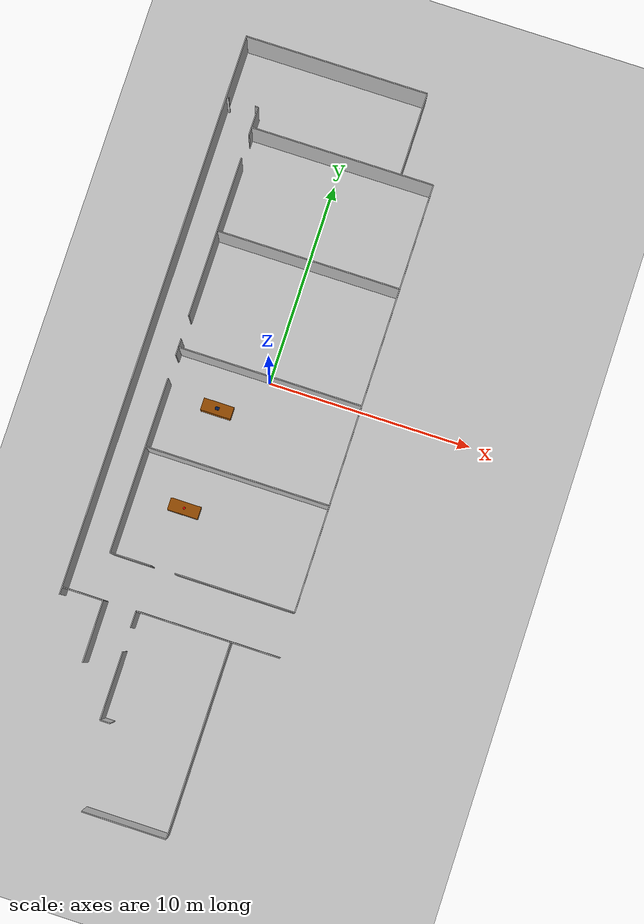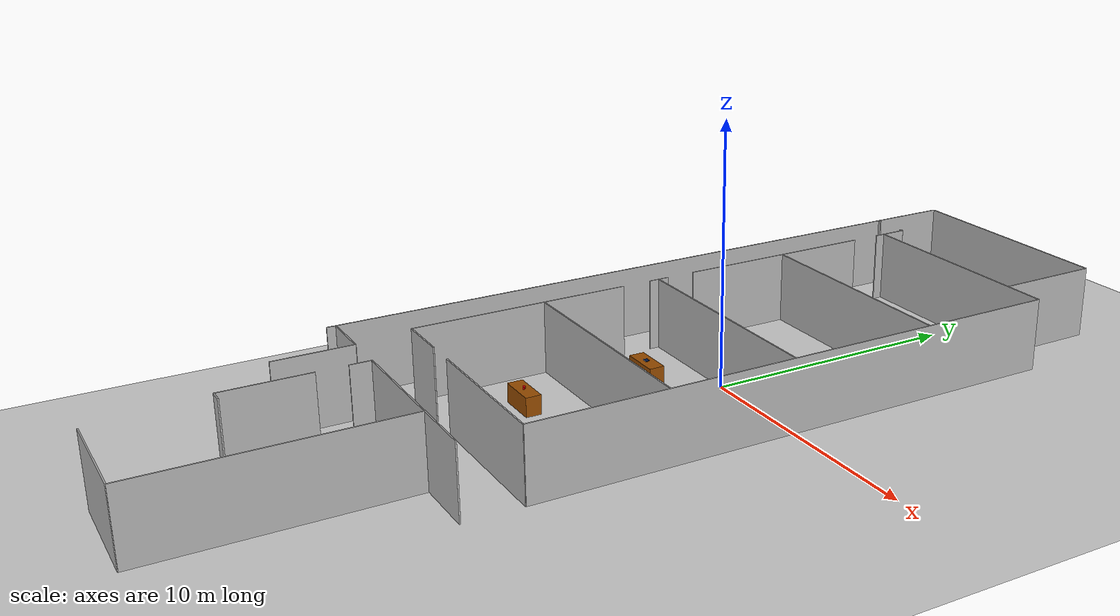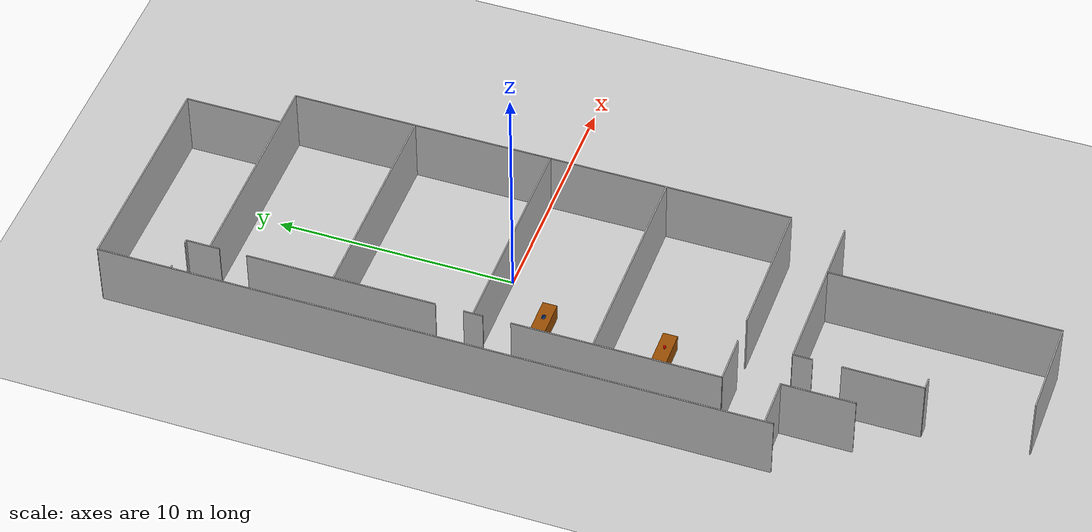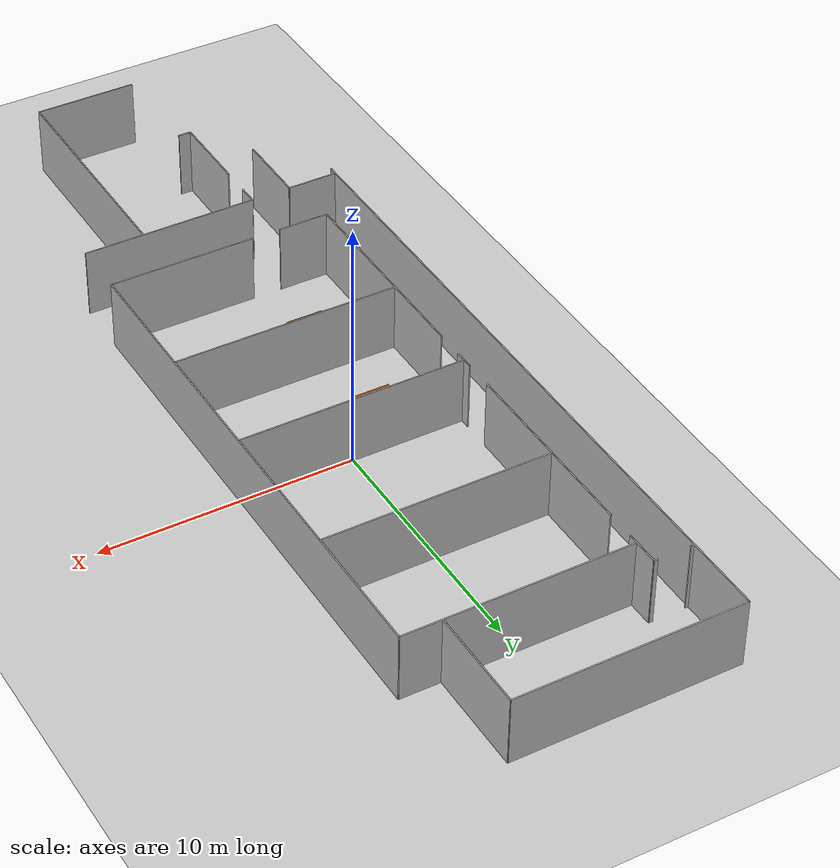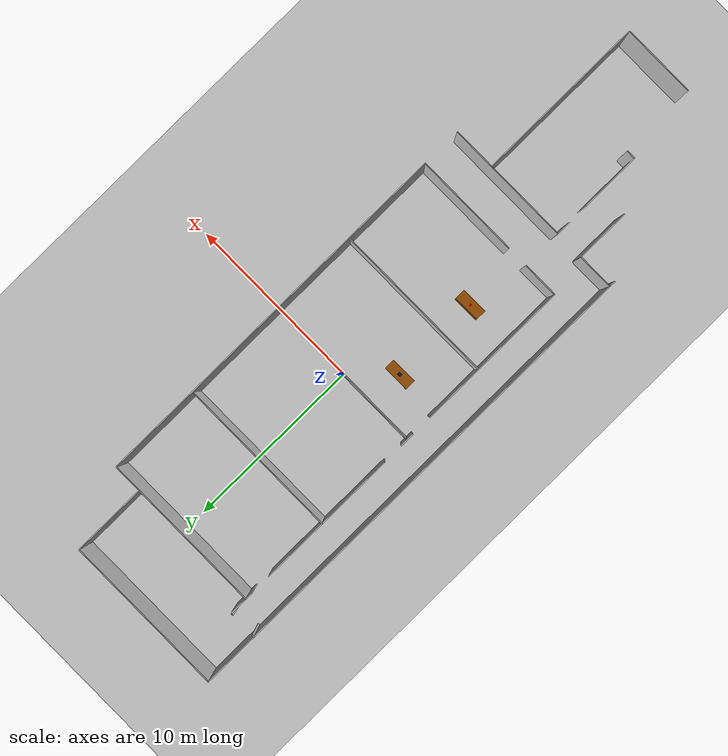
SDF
<sdf version="1.7">
 <world name="car">
  <include><uri>model://sun</uri></include>
  <include><uri>model://ground_plane</uri></include>
  <model name="wall_sx">
   <static>1</static>
   <link name="link">
    <pose>-1.6 15.1 1.4 0 -0 0</pose>
    <collision name="collision"><geometry><box><size>9 0.05 2.8</size></box></geometry></collision>
    <visual name="visual"><geometry><box><size>9 0.05 2.8</size></box></geometry></visual>
   </link>
  </model>
  <model name="wall_dx">
   <static>1</static>
   <link name="link">
    <pose>0.05 -21.75 1.4 0 -0 0</pose>
    <collision name="collision"><geometry><box><size>4.1 0.05 2.8</size></box></geometry></collision>
    <visual name="visual"><geometry><box><size>4.1 0.05 2.8</size></box></geometry></visual>
   </link>
  </model>
  <model name="wall_dx_2">
   <static>1</static>
   <link name="link">
    <pose>-2.25 -17.55 1.4 0 -0 0</pose>
    <collision name="collision"><geometry><box><size>0.5 0.05 2.8</size></box></geometry></collision>
    <visual name="visual"><geometry><box><size>0.5 0.05 2.8</size></box></geometry></visual>
   </link>
  </model>
  <model name="wall_sopra">
   <static>1</static>
   <link name="link">
    <pose>4.5 0.45 1.4 0 -0 1.57</pose>
    <collision name="collision"><geometry><box><size>21.1 0.05 2.8</size></box></geometry></collision>
    <visual name="visual"><geometry><box><size>21.1 0.05 2.8</size></box></geometry></visual>
   </link>
  </model>
  <model name="wall_sopra_1">
   <static>1</static>
   <link name="link">
    <pose>2.9 13.05 1.4 0 -0 1.57</pose>
    <collision name="collision"><geometry><box><size>4.1 0.05 2.8</size></box></geometry></collision>
    <visual name="visual"><geometry><box><size>4.1 0.05 2.8</size></box></geometry></visual>
   </link>
  </model>
  <model name="wall_sopra_2">
   <static>1</static>
   <link name="link">
    <pose>-4.1 -13.8 1.4 0 -0 1.57</pose>
    <collision name="collision"><geometry><box><size>3 0.05 2.8</size></box></geometry></collision>
    <visual name="visual"><geometry><box><size>3 0.05 2.8</size></box></geometry></visual>
   </link>
  </model>
  <model name="wall_sopra_3">
   <static>1</static>
   <link name="link">
    <pose>2.1 -17.025 1.4 0 -0 1.57</pose>
    <collision name="collision"><geometry><box><size>9.45 0.05 2.8</size></box></geometry></collision>
    <visual name="visual"><geometry><box><size>9.45 0.05 2.8</size></box></geometry></visual>
   </link>
  </model>
  <model name="corridor">
   <static>1</static>
   <link name="link">
    <pose>-6.1 1.225 1.4 0 -0 1.57</pose>
    <collision name="collision"><geometry><box><size>27.75 0.05 2.8</size></box></geometry></collision>
    <visual name="visual"><geometry><box><size>27.75 0.05 2.8</size></box></geometry></visual>
   </link>
  </model>
  <model name="corridor_vertical">
   <static>1</static>
   <link name="link">
    <pose>-5.1 -12.3 1.4 0 -0 0</pose>
    <collision name="collision"><geometry><box><size>2 0.05 2.8</size></box></geometry></collision>
    <visual name="visual"><geometry><box><size>2 0.05 2.8</size></box></geometry></visual>
   </link>
  </model>
  <model name="i">
   <static>1</static>
   <link name="link">
    <pose>0 11 1.4 0 -0 0</pose>
    <collision name="collision"><geometry><box><size>9 0.05 2.8</size></box></geometry></collision>
    <visual name="visual"><geometry><box><size>9 0.05 2.8</size></box></geometry></visual>
   </link>
  </model>
  <model name="i_2">
   <static>1</static>
   <link name="link">
    <pose>-4.575 12 1.4 0 -0 0</pose>
    <collision name="collision"><geometry><box><size>0.15 0.05 2.8</size></box></geometry></collision>
    <visual name="visual"><geometry><box><size>0.15 0.05 2.8</size></box></geometry></visual>
   </link>
  </model>
  <model name="i_3">
   <static>1</static>
   <link name="link">
    <pose>-6.025 12 1.4 0 -0 0</pose>
    <collision name="collision"><geometry><box><size>0.15 0.05 2.8</size></box></geometry></collision>
    <visual name="visual"><geometry><box><size>0.15 0.05 2.8</size></box></geometry></visual>
   </link>
  </model>
  <model name="h">
   <static>1</static>
   <link name="link">
    <pose>0 5.8 1.4 0 -0 0</pose>
    <collision name="collision"><geometry><box><size>9 0.05 2.8</size></box></geometry></collision>
    <visual name="visual"><geometry><box><size>9 0.05 2.8</size></box></geometry></visual>
   </link>
  </model>
  <model name="h_oriz">
   <static>1</static>
   <link name="link">
    <pose>-4.5 11.3 1.4 0 -0 1.57</pose>
    <collision name="collision"><geometry><box><size>1.4 0.05 2.8</size></box></geometry></collision>
    <visual name="visual"><geometry><box><size>1.4 0.05 2.8</size></box></geometry></visual>
   </link>
  </model>
  <model name="j">
   <static>1</static>
   <link name="link">
    <pose>0 0 1.4 0 -0 0</pose>
    <collision name="collision"><geometry><box><size>9 0.05 2.8</size></box></geometry></collision>
    <visual name="visual"><geometry><box><size>9 0.05 2.8</size></box></geometry></visual>
   </link>
  </model>
  <model name="j_h_oriz">
   <static>1</static>
   <link name="link">
    <pose>-4.5 5.5 1.4 0 -0 1.57</pose>
    <collision name="collision"><geometry><box><size>7.9 0.05 2.8</size></box></geometry></collision>
    <visual name="visual"><geometry><box><size>7.9 0.05 2.8</size></box></geometry></visual>
   </link>
  </model>
  <model name="j_oriz">
   <static>1</static>
   <link name="link">
    <pose>-4.5 0 1.4 0 -0 1.57</pose>
    <collision name="collision"><geometry><box><size>0.8 0.05 2.8</size></box></geometry></collision>
    <visual name="visual"><geometry><box><size>0.8 0.05 2.8</size></box></geometry></visual>
   </link>
  </model>
  <model name="k">
   <static>1</static>
   <link name="link">
    <pose>0 -4.9 1.4 0 -0 0</pose>
    <collision name="collision"><geometry><box><size>9 0.05 2.8</size></box></geometry></collision>
    <visual name="visual"><geometry><box><size>9 0.05 2.8</size></box></geometry></visual>
   </link>
  </model>
  <model name="pratica">
   <static>1</static>
   <link name="link">
    <pose>1.575 -10.1 1.4 0 -0 0</pose>
    <collision name="collision"><geometry><box><size>5.85 0.05 2.8</size></box></geometry></collision>
    <visual name="visual"><geometry><box><size>5.85 0.05 2.8</size></box></geometry></visual>
   </link>
  </model>
  <model name="pratica2">
   <static>1</static>
   <link name="link">
    <pose>-3.5 -10.1 1.4 0 -0 0</pose>
    <collision name="collision"><geometry><box><size>2 0.05 2.8</size></box></geometry></collision>
    <visual name="visual"><geometry><box><size>2 0.05 2.8</size></box></geometry></visual>
   </link>
  </model>
  <model name="k_pratica_oriz">
   <static>1</static>
   <link name="link">
    <pose>-4.5 -5.825 1.4 0 -0 1.57</pose>
    <collision name="collision"><geometry><box><size>8.55 0.05 2.8</size></box></geometry></collision>
    <visual name="visual"><geometry><box><size>8.55 0.05 2.8</size></box></geometry></visual>
   </link>
  </model>
  <model name="quadrupedi">
   <static>1</static>
   <link name="link">
    <pose>1 -12.3 1.4 0 -0 0</pose>
    <collision name="collision"><geometry><box><size>7 0.05 2.8</size></box></geometry></collision>
    <visual name="visual"><geometry><box><size>7 0.05 2.8</size></box></geometry></visual>
   </link>
  </model>
  <model name="quadrupedi_oriz1">
   <static>1</static>
   <link name="link">
    <pose>-2.5 -12.7 1.4 0 -0 1.57</pose>
    <collision name="collision"><geometry><box><size>0.8 0.05 2.8</size></box></geometry></collision>
    <visual name="visual"><geometry><box><size>0.8 0.05 2.8</size></box></geometry></visual>
   </link>
  </model>
  <model name="quadrupedi_oriz2">
   <static>1</static>
   <link name="link">
    <pose>-2.5 -15.9 1.4 0 -0 1.57</pose>
    <collision name="collision"><geometry><box><size>3.3 0.05 2.8</size></box></geometry></collision>
    <visual name="visual"><geometry><box><size>3.3 0.05 2.8</size></box></geometry></visual>
   </link>
  </model>
  <model name="mesa_obstaculo_1">
   <static>1</static>
   <pose>-2 -7 0.375 0 0 0</pose>
   <link name="link">
    <collision name="collision"><geometry><box><size>1.5 0.6 0.75</size></box></geometry></collision>
    <visual name="visual">
     <geometry><box><size>1.5 0.6 0.75</size></box></geometry>
     <material><ambient>0.6 0.3 0 1</ambient></material>
    </visual>
   </link>
  </model>
  <model name="mesa_obstaculo_4">
   <static>1</static>
   <pose>-2.0 -2.0 0.375 0 0 0</pose>
   <link name="link">
    <collision name="collision"><geometry><box><size>1.5 0.6 0.75</size></box></geometry></collision>
    <visual name="visual">
     <geometry><box><size>1.5 0.6 0.75</size></box></geometry>
     <material><ambient>0.6 0.3 0 1</ambient></material>
    </visual>
   </link>
  </model>
  <model name="libro">
   <pose>-2.0 -2.0 0.765 0 0 0</pose>
   <link name="link">
    <collision name="collision_libro"><geometry><box><size>0.2 0.15 0.03</size></box></geometry></collision>
    <visual name="visual">
     <geometry><box><size>0.2 0.15 0.03</size></box></geometry>
     <material>
      <ambient>0.0 0.1 0.3 1</ambient>
      <diffuse>0.0 0.1 0.3 1</diffuse>
      <specular>0.1 0.1 0.1 1</specular>
     </material>
    </visual>
   </link>
  </model>
  <model name="taza">
   <static>0</static>
   <pose>-2.0 -7.0 0.8 0 0 0</pose>
   <link name="link_taza">
    <visual name="cuerpo_vis">
     <geometry><cylinder><radius>0.05</radius><length>0.1</length></cylinder></geometry>
     <material><ambient>1 0 0 1</ambient><diffuse>1 0 0 1</diffuse><specular>0.1 0.1 0.1 1</specular></material>
    </visual>
    <collision name="cuerpo_col">
     <geometry><cylinder><radius>0.05</radius><length>0.1</length></cylinder></geometry>
    </collision>
    <visual name="asa_vis">
     <pose>0.06 0 0 0 0 0</pose>
     <geometry><box><size>0.03 0.015 0.06</size></box></geometry>
     <material><ambient>1 0 0 1</ambient><diffuse>1 0 0 1</diffuse></material>
    </visual>
    <collision name="asa_col">
     <pose>0.06 0 0 0 0 0</pose>
     <geometry><box><size>0.03 0.015 0.06</size></box></geometry>
    </collision>
   </link>
  </model>
 </world>
</sdf>
